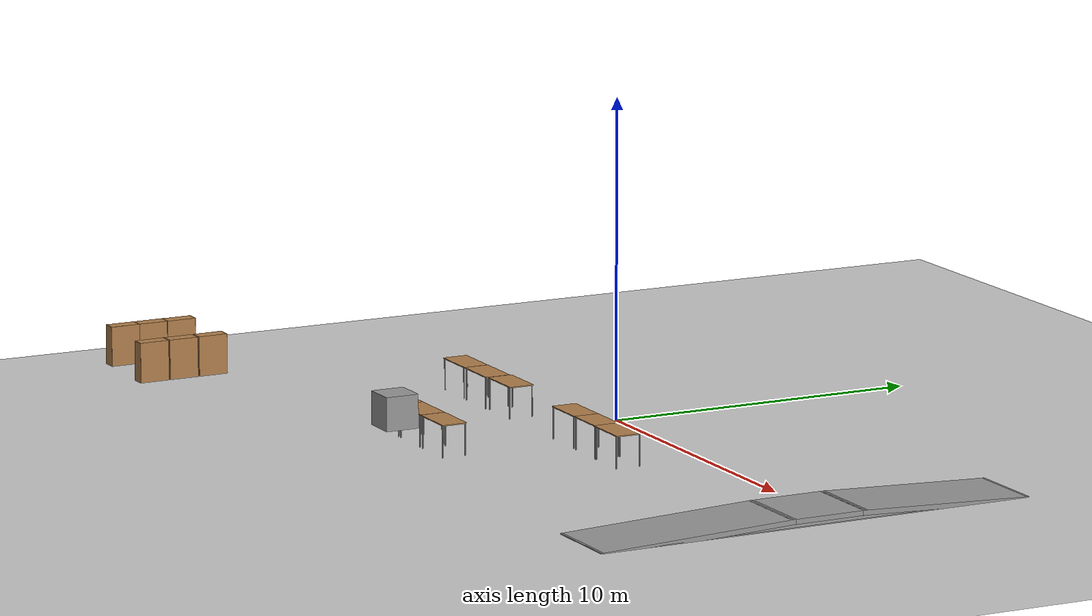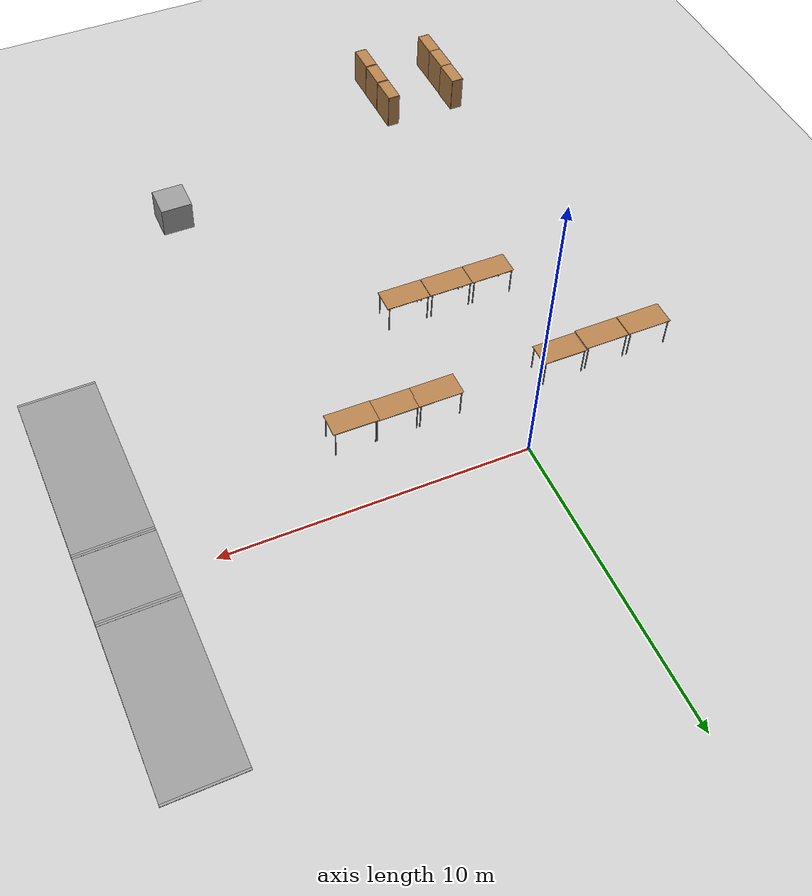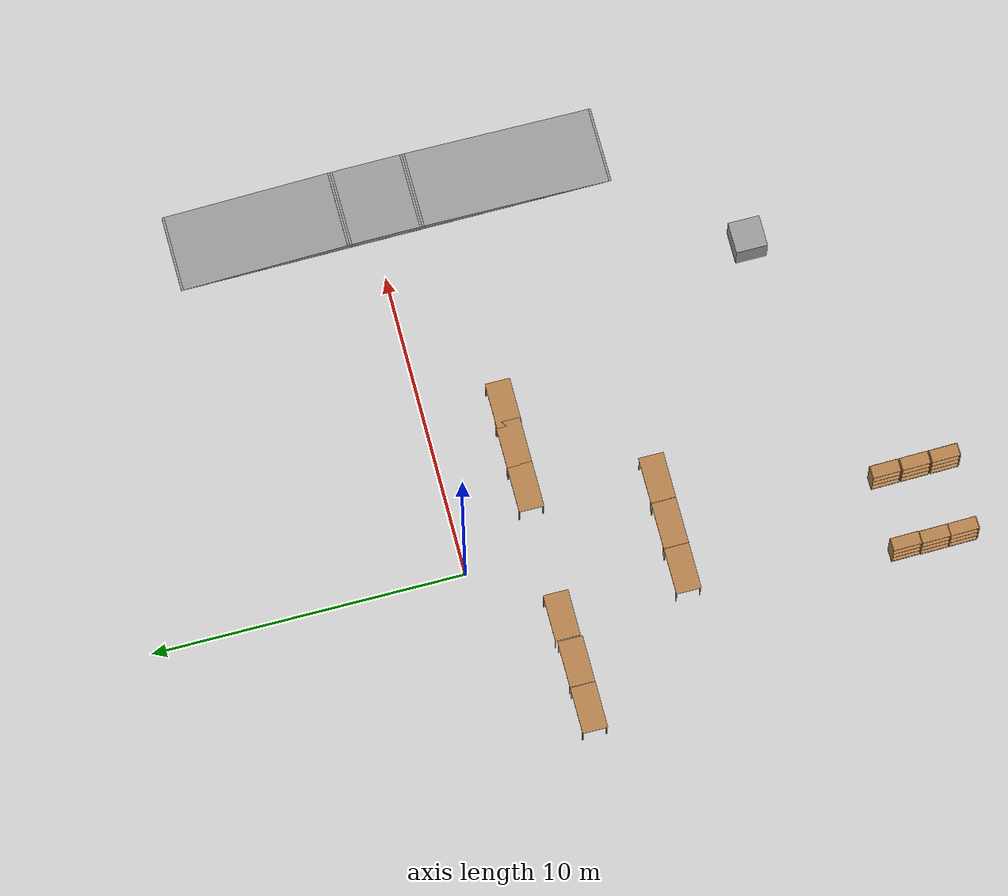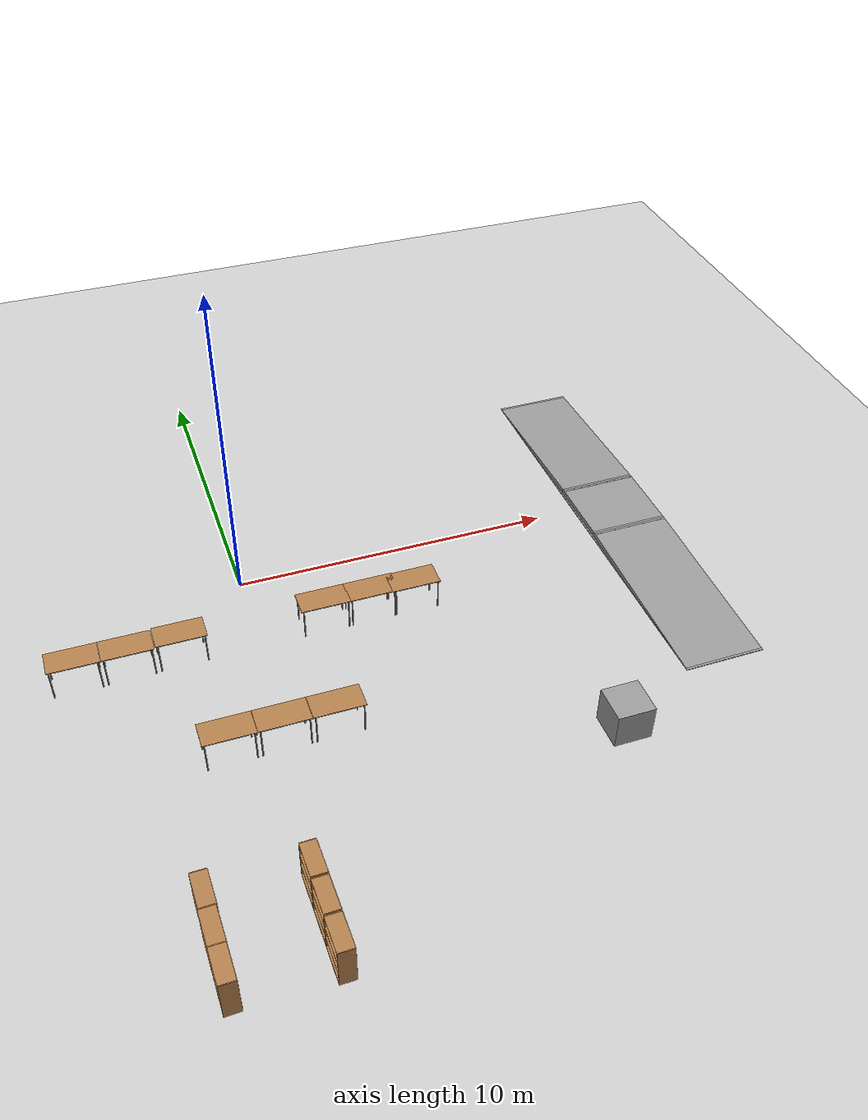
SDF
<sdf version="1.6">
 <world name="default">
  <model name="ground_plane">
   <static>1</static>
   <link name="link">
    <collision name="collision">
     <geometry><plane><normal>0 0 1</normal><size>100 100</size></plane></geometry>
     <surface><friction><ode><mu>100</mu><mu2>50</mu2></ode></friction></surface>
    </collision>
    <visual name="visual">
     <cast_shadows>0</cast_shadows>
     <geometry><plane><normal>0 0 1</normal><size>100 100</size></plane></geometry>
     <material>
      <script><uri>file://media/materials/scripts/gazebo.material</uri><name>Gazebo/Grey</name></script>
     </material>
    </visual>
   </link>
  </model>
  <model name="table">
   <static>1</static>
   <link name="link">
    <collision name="surface">
     <pose>0 0 1 0 -0 0</pose>
     <geometry><box><size>1.5 0.8 0.03</size></box></geometry>
     <surface><friction><ode><mu>0.6</mu><mu2>0.6</mu2></ode></friction></surface>
    </collision>
    <visual name="visual1">
     <pose>0 0 1 0 -0 0</pose>
     <geometry><box><size>1.5 0.8 0.03</size></box></geometry>
     <material>
      <script><uri>file://media/materials/scripts/gazebo.material</uri><name>Gazebo/Wood</name></script>
     </material>
    </visual>
    <collision name="front_left_leg">
     <pose>0.68 0.38 0.5 0 -0 0</pose>
     <geometry><cylinder><radius>0.02</radius><length>1</length></cylinder></geometry>
    </collision>
    <visual name="front_left_leg">
     <pose>0.68 0.38 0.5 0 -0 0</pose>
     <geometry><cylinder><radius>0.02</radius><length>1</length></cylinder></geometry>
     <material>
      <script><uri>file://media/materials/scripts/gazebo.material</uri><name>Gazebo/Grey</name></script>
     </material>
    </visual>
    <collision name="front_right_leg">
     <pose>0.68 -0.38 0.5 0 -0 0</pose>
     <geometry><cylinder><radius>0.02</radius><length>1</length></cylinder></geometry>
    </collision>
    <visual name="front_right_leg">
     <pose>0.68 -0.38 0.5 0 -0 0</pose>
     <geometry><cylinder><radius>0.02</radius><length>1</length></cylinder></geometry>
     <material>
      <script><uri>file://media/materials/scripts/gazebo.material</uri><name>Gazebo/Grey</name></script>
     </material>
    </visual>
    <collision name="back_right_leg">
     <pose>-0.68 -0.38 0.5 0 -0 0</pose>
     <geometry><cylinder><radius>0.02</radius><length>1</length></cylinder></geometry>
    </collision>
    <visual name="back_right_leg">
     <pose>-0.68 -0.38 0.5 0 -0 0</pose>
     <geometry><cylinder><radius>0.02</radius><length>1</length></cylinder></geometry>
     <material>
      <script><uri>file://media/materials/scripts/gazebo.material</uri><name>Gazebo/Grey</name></script>
     </material>
    </visual>
    <collision name="back_left_leg">
     <pose>-0.68 0.38 0.5 0 -0 0</pose>
     <geometry><cylinder><radius>0.02</radius><length>1</length></cylinder></geometry>
    </collision>
    <visual name="back_left_leg">
     <pose>-0.68 0.38 0.5 0 -0 0</pose>
     <geometry><cylinder><radius>0.02</radius><length>1</length></cylinder></geometry>
     <material>
      <script><uri>file://media/materials/scripts/gazebo.material</uri><name>Gazebo/Grey</name></script>
     </material>
    </visual>
   </link>
   <pose>-1.77581 -6.45658 0 0 -0 0</pose>
  </model>
  <model name="table_0">
   <static>1</static>
   <link name="link">
    <collision name="surface">
     <pose>0 0 1 0 -0 0</pose>
     <geometry><box><size>1.5 0.8 0.03</size></box></geometry>
     <surface><friction><ode><mu>0.6</mu><mu2>0.6</mu2></ode></friction></surface>
    </collision>
    <visual name="visual1">
     <pose>0 0 1 0 -0 0</pose>
     <geometry><box><size>1.5 0.8 0.03</size></box></geometry>
     <material>
      <script><uri>file://media/materials/scripts/gazebo.material</uri><name>Gazebo/Wood</name></script>
     </material>
    </visual>
    <collision name="front_left_leg">
     <pose>0.68 0.38 0.5 0 -0 0</pose>
     <geometry><cylinder><radius>0.02</radius><length>1</length></cylinder></geometry>
    </collision>
    <visual name="front_left_leg">
     <pose>0.68 0.38 0.5 0 -0 0</pose>
     <geometry><cylinder><radius>0.02</radius><length>1</length></cylinder></geometry>
     <material>
      <script><uri>file://media/materials/scripts/gazebo.material</uri><name>Gazebo/Grey</name></script>
     </material>
    </visual>
    <collision name="front_right_leg">
     <pose>0.68 -0.38 0.5 0 -0 0</pose>
     <geometry><cylinder><radius>0.02</radius><length>1</length></cylinder></geometry>
    </collision>
    <visual name="front_right_leg">
     <pose>0.68 -0.38 0.5 0 -0 0</pose>
     <geometry><cylinder><radius>0.02</radius><length>1</length></cylinder></geometry>
     <material>
      <script><uri>file://media/materials/scripts/gazebo.material</uri><name>Gazebo/Grey</name></script>
     </material>
    </visual>
    <collision name="back_right_leg">
     <pose>-0.68 -0.38 0.5 0 -0 0</pose>
     <geometry><cylinder><radius>0.02</radius><length>1</length></cylinder></geometry>
    </collision>
    <visual name="back_right_leg">
     <pose>-0.68 -0.38 0.5 0 -0 0</pose>
     <geometry><cylinder><radius>0.02</radius><length>1</length></cylinder></geometry>
     <material>
      <script><uri>file://media/materials/scripts/gazebo.material</uri><name>Gazebo/Grey</name></script>
     </material>
    </visual>
    <collision name="back_left_leg">
     <pose>-0.68 0.38 0.5 0 -0 0</pose>
     <geometry><cylinder><radius>0.02</radius><length>1</length></cylinder></geometry>
    </collision>
    <visual name="back_left_leg">
     <pose>-0.68 0.38 0.5 0 -0 0</pose>
     <geometry><cylinder><radius>0.02</radius><length>1</length></cylinder></geometry>
     <material>
      <script><uri>file://media/materials/scripts/gazebo.material</uri><name>Gazebo/Grey</name></script>
     </material>
    </visual>
   </link>
   <pose>-0.266949 -6.45533 0 0 -0 0</pose>
  </model>
  <model name="table_1">
   <static>1</static>
   <link name="link">
    <collision name="surface">
     <pose>0 0 1 0 -0 0</pose>
     <geometry><box><size>1.5 0.8 0.03</size></box></geometry>
     <surface><friction><ode><mu>0.6</mu><mu2>0.6</mu2></ode></friction></surface>
    </collision>
    <visual name="visual1">
     <pose>0 0 1 0 -0 0</pose>
     <geometry><box><size>1.5 0.8 0.03</size></box></geometry>
     <material>
      <script><uri>file://media/materials/scripts/gazebo.material</uri><name>Gazebo/Wood</name></script>
     </material>
    </visual>
    <collision name="front_left_leg">
     <pose>0.68 0.38 0.5 0 -0 0</pose>
     <geometry><cylinder><radius>0.02</radius><length>1</length></cylinder></geometry>
    </collision>
    <visual name="front_left_leg">
     <pose>0.68 0.38 0.5 0 -0 0</pose>
     <geometry><cylinder><radius>0.02</radius><length>1</length></cylinder></geometry>
     <material>
      <script><uri>file://media/materials/scripts/gazebo.material</uri><name>Gazebo/Grey</name></script>
     </material>
    </visual>
    <collision name="front_right_leg">
     <pose>0.68 -0.38 0.5 0 -0 0</pose>
     <geometry><cylinder><radius>0.02</radius><length>1</length></cylinder></geometry>
    </collision>
    <visual name="front_right_leg">
     <pose>0.68 -0.38 0.5 0 -0 0</pose>
     <geometry><cylinder><radius>0.02</radius><length>1</length></cylinder></geometry>
     <material>
      <script><uri>file://media/materials/scripts/gazebo.material</uri><name>Gazebo/Grey</name></script>
     </material>
    </visual>
    <collision name="back_right_leg">
     <pose>-0.68 -0.38 0.5 0 -0 0</pose>
     <geometry><cylinder><radius>0.02</radius><length>1</length></cylinder></geometry>
    </collision>
    <visual name="back_right_leg">
     <pose>-0.68 -0.38 0.5 0 -0 0</pose>
     <geometry><cylinder><radius>0.02</radius><length>1</length></cylinder></geometry>
     <material>
      <script><uri>file://media/materials/scripts/gazebo.material</uri><name>Gazebo/Grey</name></script>
     </material>
    </visual>
    <collision name="back_left_leg">
     <pose>-0.68 0.38 0.5 0 -0 0</pose>
     <geometry><cylinder><radius>0.02</radius><length>1</length></cylinder></geometry>
    </collision>
    <visual name="back_left_leg">
     <pose>-0.68 0.38 0.5 0 -0 0</pose>
     <geometry><cylinder><radius>0.02</radius><length>1</length></cylinder></geometry>
     <material>
      <script><uri>file://media/materials/scripts/gazebo.material</uri><name>Gazebo/Grey</name></script>
     </material>
    </visual>
   </link>
   <pose>1.24514 -6.45321 0 0 -0 0</pose>
  </model>
  <model name="table_14">
   <static>1</static>
   <link name="link">
    <collision name="surface">
     <pose>0 0 1 0 -0 0</pose>
     <geometry><box><size>1.5 0.8 0.03</size></box></geometry>
     <surface><friction><ode><mu>0.6</mu><mu2>0.6</mu2></ode></friction></surface>
    </collision>
    <visual name="visual1">
     <pose>0 0 1 0 -0 0</pose>
     <geometry><box><size>1.5 0.8 0.03</size></box></geometry>
     <material>
      <script><uri>file://media/materials/scripts/gazebo.material</uri><name>Gazebo/Wood</name></script>
     </material>
    </visual>
    <collision name="front_left_leg">
     <pose>0.68 0.38 0.5 0 -0 0</pose>
     <geometry><cylinder><radius>0.02</radius><length>1</length></cylinder></geometry>
    </collision>
    <visual name="front_left_leg">
     <pose>0.68 0.38 0.5 0 -0 0</pose>
     <geometry><cylinder><radius>0.02</radius><length>1</length></cylinder></geometry>
     <material>
      <script><uri>file://media/materials/scripts/gazebo.material</uri><name>Gazebo/Grey</name></script>
     </material>
    </visual>
    <collision name="front_right_leg">
     <pose>0.68 -0.38 0.5 0 -0 0</pose>
     <geometry><cylinder><radius>0.02</radius><length>1</length></cylinder></geometry>
    </collision>
    <visual name="front_right_leg">
     <pose>0.68 -0.38 0.5 0 -0 0</pose>
     <geometry><cylinder><radius>0.02</radius><length>1</length></cylinder></geometry>
     <material>
      <script><uri>file://media/materials/scripts/gazebo.material</uri><name>Gazebo/Grey</name></script>
     </material>
    </visual>
    <collision name="back_right_leg">
     <pose>-0.68 -0.38 0.5 0 -0 0</pose>
     <geometry><cylinder><radius>0.02</radius><length>1</length></cylinder></geometry>
    </collision>
    <visual name="back_right_leg">
     <pose>-0.68 -0.38 0.5 0 -0 0</pose>
     <geometry><cylinder><radius>0.02</radius><length>1</length></cylinder></geometry>
     <material>
      <script><uri>file://media/materials/scripts/gazebo.material</uri><name>Gazebo/Grey</name></script>
     </material>
    </visual>
    <collision name="back_left_leg">
     <pose>-0.68 0.38 0.5 0 -0 0</pose>
     <geometry><cylinder><radius>0.02</radius><length>1</length></cylinder></geometry>
    </collision>
    <visual name="back_left_leg">
     <pose>-0.68 0.38 0.5 0 -0 0</pose>
     <geometry><cylinder><radius>0.02</radius><length>1</length></cylinder></geometry>
     <material>
      <script><uri>file://media/materials/scripts/gazebo.material</uri><name>Gazebo/Grey</name></script>
     </material>
    </visual>
   </link>
   <pose>-5.32468 -2.52711 0 0 -0 0</pose>
  </model>
  <model name="table_15">
   <static>1</static>
   <link name="link">
    <collision name="surface">
     <pose>0 0 1 0 -0 0</pose>
     <geometry><box><size>1.5 0.8 0.03</size></box></geometry>
     <surface><friction><ode><mu>0.6</mu><mu2>0.6</mu2></ode></friction></surface>
    </collision>
    <visual name="visual1">
     <pose>0 0 1 0 -0 0</pose>
     <geometry><box><size>1.5 0.8 0.03</size></box></geometry>
     <material>
      <script><uri>file://media/materials/scripts/gazebo.material</uri><name>Gazebo/Wood</name></script>
     </material>
    </visual>
    <collision name="front_left_leg">
     <pose>0.68 0.38 0.5 0 -0 0</pose>
     <geometry><cylinder><radius>0.02</radius><length>1</length></cylinder></geometry>
    </collision>
    <visual name="front_left_leg">
     <pose>0.68 0.38 0.5 0 -0 0</pose>
     <geometry><cylinder><radius>0.02</radius><length>1</length></cylinder></geometry>
     <material>
      <script><uri>file://media/materials/scripts/gazebo.material</uri><name>Gazebo/Grey</name></script>
     </material>
    </visual>
    <collision name="front_right_leg">
     <pose>0.68 -0.38 0.5 0 -0 0</pose>
     <geometry><cylinder><radius>0.02</radius><length>1</length></cylinder></geometry>
    </collision>
    <visual name="front_right_leg">
     <pose>0.68 -0.38 0.5 0 -0 0</pose>
     <geometry><cylinder><radius>0.02</radius><length>1</length></cylinder></geometry>
     <material>
      <script><uri>file://media/materials/scripts/gazebo.material</uri><name>Gazebo/Grey</name></script>
     </material>
    </visual>
    <collision name="back_right_leg">
     <pose>-0.68 -0.38 0.5 0 -0 0</pose>
     <geometry><cylinder><radius>0.02</radius><length>1</length></cylinder></geometry>
    </collision>
    <visual name="back_right_leg">
     <pose>-0.68 -0.38 0.5 0 -0 0</pose>
     <geometry><cylinder><radius>0.02</radius><length>1</length></cylinder></geometry>
     <material>
      <script><uri>file://media/materials/scripts/gazebo.material</uri><name>Gazebo/Grey</name></script>
     </material>
    </visual>
    <collision name="back_left_leg">
     <pose>-0.68 0.38 0.5 0 -0 0</pose>
     <geometry><cylinder><radius>0.02</radius><length>1</length></cylinder></geometry>
    </collision>
    <visual name="back_left_leg">
     <pose>-0.68 0.38 0.5 0 -0 0</pose>
     <geometry><cylinder><radius>0.02</radius><length>1</length></cylinder></geometry>
     <material>
      <script><uri>file://media/materials/scripts/gazebo.material</uri><name>Gazebo/Grey</name></script>
     </material>
    </visual>
   </link>
   <pose>-3.80987 -2.52228 0 0 -0 0</pose>
  </model>
  <model name="table_16">
   <static>1</static>
   <link name="link">
    <collision name="surface">
     <pose>0 0 1 0 -0 0</pose>
     <geometry><box><size>1.5 0.8 0.03</size></box></geometry>
     <surface><friction><ode><mu>0.6</mu><mu2>0.6</mu2></ode></friction></surface>
    </collision>
    <visual name="visual1">
     <pose>0 0 1 0 -0 0</pose>
     <geometry><box><size>1.5 0.8 0.03</size></box></geometry>
     <material>
      <script><uri>file://media/materials/scripts/gazebo.material</uri><name>Gazebo/Wood</name></script>
     </material>
    </visual>
    <collision name="front_left_leg">
     <pose>0.68 0.38 0.5 0 -0 0</pose>
     <geometry><cylinder><radius>0.02</radius><length>1</length></cylinder></geometry>
    </collision>
    <visual name="front_left_leg">
     <pose>0.68 0.38 0.5 0 -0 0</pose>
     <geometry><cylinder><radius>0.02</radius><length>1</length></cylinder></geometry>
     <material>
      <script><uri>file://media/materials/scripts/gazebo.material</uri><name>Gazebo/Grey</name></script>
     </material>
    </visual>
    <collision name="front_right_leg">
     <pose>0.68 -0.38 0.5 0 -0 0</pose>
     <geometry><cylinder><radius>0.02</radius><length>1</length></cylinder></geometry>
    </collision>
    <visual name="front_right_leg">
     <pose>0.68 -0.38 0.5 0 -0 0</pose>
     <geometry><cylinder><radius>0.02</radius><length>1</length></cylinder></geometry>
     <material>
      <script><uri>file://media/materials/scripts/gazebo.material</uri><name>Gazebo/Grey</name></script>
     </material>
    </visual>
    <collision name="back_right_leg">
     <pose>-0.68 -0.38 0.5 0 -0 0</pose>
     <geometry><cylinder><radius>0.02</radius><length>1</length></cylinder></geometry>
    </collision>
    <visual name="back_right_leg">
     <pose>-0.68 -0.38 0.5 0 -0 0</pose>
     <geometry><cylinder><radius>0.02</radius><length>1</length></cylinder></geometry>
     <material>
      <script><uri>file://media/materials/scripts/gazebo.material</uri><name>Gazebo/Grey</name></script>
     </material>
    </visual>
    <collision name="back_left_leg">
     <pose>-0.68 0.38 0.5 0 -0 0</pose>
     <geometry><cylinder><radius>0.02</radius><length>1</length></cylinder></geometry>
    </collision>
    <visual name="back_left_leg">
     <pose>-0.68 0.38 0.5 0 -0 0</pose>
     <geometry><cylinder><radius>0.02</radius><length>1</length></cylinder></geometry>
     <material>
      <script><uri>file://media/materials/scripts/gazebo.material</uri><name>Gazebo/Grey</name></script>
     </material>
    </visual>
   </link>
   <pose>-2.27795 -2.46752 0 0 -0 0</pose>
  </model>
  <model name="table_19">
   <static>1</static>
   <link name="link">
    <collision name="surface">
     <pose>0 0 1 0 -0 0</pose>
     <geometry><box><size>1.5 0.8 0.03</size></box></geometry>
     <surface><friction><ode><mu>0.6</mu><mu2>0.6</mu2></ode></friction></surface>
    </collision>
    <visual name="visual1">
     <pose>0 0 1 0 -0 0</pose>
     <geometry><box><size>1.5 0.8 0.03</size></box></geometry>
     <material>
      <script><uri>file://media/materials/scripts/gazebo.material</uri><name>Gazebo/Wood</name></script>
     </material>
    </visual>
    <collision name="front_left_leg">
     <pose>0.68 0.38 0.5 0 -0 0</pose>
     <geometry><cylinder><radius>0.02</radius><length>1</length></cylinder></geometry>
    </collision>
    <visual name="front_left_leg">
     <pose>0.68 0.38 0.5 0 -0 0</pose>
     <geometry><cylinder><radius>0.02</radius><length>1</length></cylinder></geometry>
     <material>
      <script><uri>file://media/materials/scripts/gazebo.material</uri><name>Gazebo/Grey</name></script>
     </material>
    </visual>
    <collision name="front_right_leg">
     <pose>0.68 -0.38 0.5 0 -0 0</pose>
     <geometry><cylinder><radius>0.02</radius><length>1</length></cylinder></geometry>
    </collision>
    <visual name="front_right_leg">
     <pose>0.68 -0.38 0.5 0 -0 0</pose>
     <geometry><cylinder><radius>0.02</radius><length>1</length></cylinder></geometry>
     <material>
      <script><uri>file://media/materials/scripts/gazebo.material</uri><name>Gazebo/Grey</name></script>
     </material>
    </visual>
    <collision name="back_right_leg">
     <pose>-0.68 -0.38 0.5 0 -0 0</pose>
     <geometry><cylinder><radius>0.02</radius><length>1</length></cylinder></geometry>
    </collision>
    <visual name="back_right_leg">
     <pose>-0.68 -0.38 0.5 0 -0 0</pose>
     <geometry><cylinder><radius>0.02</radius><length>1</length></cylinder></geometry>
     <material>
      <script><uri>file://media/materials/scripts/gazebo.material</uri><name>Gazebo/Grey</name></script>
     </material>
    </visual>
    <collision name="back_left_leg">
     <pose>-0.68 0.38 0.5 0 -0 0</pose>
     <geometry><cylinder><radius>0.02</radius><length>1</length></cylinder></geometry>
    </collision>
    <visual name="back_left_leg">
     <pose>-0.68 0.38 0.5 0 -0 0</pose>
     <geometry><cylinder><radius>0.02</radius><length>1</length></cylinder></geometry>
     <material>
      <script><uri>file://media/materials/scripts/gazebo.material</uri><name>Gazebo/Grey</name></script>
     </material>
    </visual>
   </link>
   <pose>4.78899 -2.46187 0 0 -0 0</pose>
  </model>
  <model name="bookshelf_clone_clone_clone_17">
   <static>1</static>
   <link name="link">
    <inertial><mass>1</mass></inertial>
    <collision name="back">
     <pose>0 0.005 0.6 0 -0 0</pose>
     <geometry><box><size>0.9 0.01 1.2</size></box></geometry>
    </collision>
    <visual name="visual1">
     <pose>0 0.005 0.6 0 -0 0</pose>
     <geometry><box><size>0.9 0.01 1.2</size></box></geometry>
     <material>
      <script><uri>file://media/materials/scripts/gazebo.material</uri><name>Gazebo/Wood</name></script>
     </material>
    </visual>
    <collision name="left_side">
     <pose>0.45 -0.195 0.6 0 -0 0</pose>
     <geometry><box><size>0.02 0.4 1.2</size></box></geometry>
    </collision>
    <visual name="visual2">
     <pose>0.45 -0.195 0.6 0 -0 0</pose>
     <geometry><box><size>0.02 0.4 1.2</size></box></geometry>
     <material>
      <script><uri>file://media/materials/scripts/gazebo.material</uri><name>Gazebo/Wood</name></script>
     </material>
    </visual>
    <collision name="right_side">
     <pose>-0.45 -0.195 0.6 0 -0 0</pose>
     <geometry><box><size>0.02 0.4 1.2</size></box></geometry>
    </collision>
    <visual name="visual3">
     <pose>-0.45 -0.195 0.6 0 -0 0</pose>
     <geometry><box><size>0.02 0.4 1.2</size></box></geometry>
     <material>
      <script><uri>file://media/materials/scripts/gazebo.material</uri><name>Gazebo/Wood</name></script>
     </material>
    </visual>
    <collision name="bottom">
     <pose>0 -0.195 0.03 0 -0 0</pose>
     <geometry><box><size>0.88 0.4 0.06</size></box></geometry>
    </collision>
    <visual name="visual4">
     <pose>0 -0.195 0.03 0 -0 0</pose>
     <geometry><box><size>0.88 0.4 0.06</size></box></geometry>
     <material>
      <script><uri>file://media/materials/scripts/gazebo.material</uri><name>Gazebo/Wood</name></script>
     </material>
    </visual>
    <collision name="top">
     <pose>0 -0.195 1.19 0 -0 0</pose>
     <geometry><box><size>0.88 0.4 0.02</size></box></geometry>
    </collision>
    <visual name="visual5">
     <pose>0 -0.195 1.19 0 -0 0</pose>
     <geometry><box><size>0.88 0.4 0.02</size></box></geometry>
     <material>
      <script><uri>file://media/materials/scripts/gazebo.material</uri><name>Gazebo/Wood</name></script>
     </material>
    </visual>
    <collision name="low_shelf">
     <pose>0 -0.195 0.43 0 -0 0</pose>
     <geometry><box><size>0.88 0.4 0.02</size></box></geometry>
    </collision>
    <visual name="visual6">
     <pose>0 -0.195 0.43 0 -0 0</pose>
     <geometry><box><size>0.88 0.4 0.02</size></box></geometry>
     <material>
      <script><uri>file://media/materials/scripts/gazebo.material</uri><name>Gazebo/Wood</name></script>
     </material>
    </visual>
    <collision name="high_shelf">
     <pose>0 -0.195 0.8 0 -0 0</pose>
     <geometry><box><size>0.88 0.4 0.02</size></box></geometry>
    </collision>
    <visual name="visual7">
     <pose>0 -0.195 0.8 0 -0 0</pose>
     <geometry><box><size>0.88 0.4 0.02</size></box></geometry>
     <material>
      <script><uri>file://media/materials/scripts/gazebo.material</uri><name>Gazebo/Wood</name></script>
     </material>
    </visual>
    <enable_wind>1</enable_wind>
   </link>
   <pose>-3.23164 -12.9838 2.61718 0 0 -1.55468</pose>
   <enable_wind>1</enable_wind>
  </model>
  <model name="bookshelf_clone_clone_clone_18">
   <static>1</static>
   <link name="link">
    <inertial><mass>1</mass></inertial>
    <collision name="back">
     <pose>0 0.005 0.6 0 -0 0</pose>
     <geometry><box><size>0.9 0.01 1.2</size></box></geometry>
    </collision>
    <visual name="visual1">
     <pose>0 0.005 0.6 0 -0 0</pose>
     <geometry><box><size>0.9 0.01 1.2</size></box></geometry>
     <material>
      <script><uri>file://media/materials/scripts/gazebo.material</uri><name>Gazebo/Wood</name></script>
     </material>
    </visual>
    <collision name="left_side">
     <pose>0.45 -0.195 0.6 0 -0 0</pose>
     <geometry><box><size>0.02 0.4 1.2</size></box></geometry>
    </collision>
    <visual name="visual2">
     <pose>0.45 -0.195 0.6 0 -0 0</pose>
     <geometry><box><size>0.02 0.4 1.2</size></box></geometry>
     <material>
      <script><uri>file://media/materials/scripts/gazebo.material</uri><name>Gazebo/Wood</name></script>
     </material>
    </visual>
    <collision name="right_side">
     <pose>-0.45 -0.195 0.6 0 -0 0</pose>
     <geometry><box><size>0.02 0.4 1.2</size></box></geometry>
    </collision>
    <visual name="visual3">
     <pose>-0.45 -0.195 0.6 0 -0 0</pose>
     <geometry><box><size>0.02 0.4 1.2</size></box></geometry>
     <material>
      <script><uri>file://media/materials/scripts/gazebo.material</uri><name>Gazebo/Wood</name></script>
     </material>
    </visual>
    <collision name="bottom">
     <pose>0 -0.195 0.03 0 -0 0</pose>
     <geometry><box><size>0.88 0.4 0.06</size></box></geometry>
    </collision>
    <visual name="visual4">
     <pose>0 -0.195 0.03 0 -0 0</pose>
     <geometry><box><size>0.88 0.4 0.06</size></box></geometry>
     <material>
      <script><uri>file://media/materials/scripts/gazebo.material</uri><name>Gazebo/Wood</name></script>
     </material>
    </visual>
    <collision name="top">
     <pose>0 -0.195 1.19 0 -0 0</pose>
     <geometry><box><size>0.88 0.4 0.02</size></box></geometry>
    </collision>
    <visual name="visual5">
     <pose>0 -0.195 1.19 0 -0 0</pose>
     <geometry><box><size>0.88 0.4 0.02</size></box></geometry>
     <material>
      <script><uri>file://media/materials/scripts/gazebo.material</uri><name>Gazebo/Wood</name></script>
     </material>
    </visual>
    <collision name="low_shelf">
     <pose>0 -0.195 0.43 0 -0 0</pose>
     <geometry><box><size>0.88 0.4 0.02</size></box></geometry>
    </collision>
    <visual name="visual6">
     <pose>0 -0.195 0.43 0 -0 0</pose>
     <geometry><box><size>0.88 0.4 0.02</size></box></geometry>
     <material>
      <script><uri>file://media/materials/scripts/gazebo.material</uri><name>Gazebo/Wood</name></script>
     </material>
    </visual>
    <collision name="high_shelf">
     <pose>0 -0.195 0.8 0 -0 0</pose>
     <geometry><box><size>0.88 0.4 0.02</size></box></geometry>
    </collision>
    <visual name="visual7">
     <pose>0 -0.195 0.8 0 -0 0</pose>
     <geometry><box><size>0.88 0.4 0.02</size></box></geometry>
     <material>
      <script><uri>file://media/materials/scripts/gazebo.material</uri><name>Gazebo/Wood</name></script>
     </material>
    </visual>
    <enable_wind>1</enable_wind>
   </link>
   <pose>-3.23274 -13.8968 2.61718 0 0 -1.55468</pose>
   <enable_wind>1</enable_wind>
  </model>
  <model name="bookshelf_clone_clone_clone_19">
   <static>1</static>
   <link name="link">
    <inertial><mass>1</mass></inertial>
    <collision name="back">
     <pose>0 0.005 0.6 0 -0 0</pose>
     <geometry><box><size>0.9 0.01 1.2</size></box></geometry>
    </collision>
    <visual name="visual1">
     <pose>0 0.005 0.6 0 -0 0</pose>
     <geometry><box><size>0.9 0.01 1.2</size></box></geometry>
     <material>
      <script><uri>file://media/materials/scripts/gazebo.material</uri><name>Gazebo/Wood</name></script>
     </material>
    </visual>
    <collision name="left_side">
     <pose>0.45 -0.195 0.6 0 -0 0</pose>
     <geometry><box><size>0.02 0.4 1.2</size></box></geometry>
    </collision>
    <visual name="visual2">
     <pose>0.45 -0.195 0.6 0 -0 0</pose>
     <geometry><box><size>0.02 0.4 1.2</size></box></geometry>
     <material>
      <script><uri>file://media/materials/scripts/gazebo.material</uri><name>Gazebo/Wood</name></script>
     </material>
    </visual>
    <collision name="right_side">
     <pose>-0.45 -0.195 0.6 0 -0 0</pose>
     <geometry><box><size>0.02 0.4 1.2</size></box></geometry>
    </collision>
    <visual name="visual3">
     <pose>-0.45 -0.195 0.6 0 -0 0</pose>
     <geometry><box><size>0.02 0.4 1.2</size></box></geometry>
     <material>
      <script><uri>file://media/materials/scripts/gazebo.material</uri><name>Gazebo/Wood</name></script>
     </material>
    </visual>
    <collision name="bottom">
     <pose>0 -0.195 0.03 0 -0 0</pose>
     <geometry><box><size>0.88 0.4 0.06</size></box></geometry>
    </collision>
    <visual name="visual4">
     <pose>0 -0.195 0.03 0 -0 0</pose>
     <geometry><box><size>0.88 0.4 0.06</size></box></geometry>
     <material>
      <script><uri>file://media/materials/scripts/gazebo.material</uri><name>Gazebo/Wood</name></script>
     </material>
    </visual>
    <collision name="top">
     <pose>0 -0.195 1.19 0 -0 0</pose>
     <geometry><box><size>0.88 0.4 0.02</size></box></geometry>
    </collision>
    <visual name="visual5">
     <pose>0 -0.195 1.19 0 -0 0</pose>
     <geometry><box><size>0.88 0.4 0.02</size></box></geometry>
     <material>
      <script><uri>file://media/materials/scripts/gazebo.material</uri><name>Gazebo/Wood</name></script>
     </material>
    </visual>
    <collision name="low_shelf">
     <pose>0 -0.195 0.43 0 -0 0</pose>
     <geometry><box><size>0.88 0.4 0.02</size></box></geometry>
    </collision>
    <visual name="visual6">
     <pose>0 -0.195 0.43 0 -0 0</pose>
     <geometry><box><size>0.88 0.4 0.02</size></box></geometry>
     <material>
      <script><uri>file://media/materials/scripts/gazebo.material</uri><name>Gazebo/Wood</name></script>
     </material>
    </visual>
    <collision name="high_shelf">
     <pose>0 -0.195 0.8 0 -0 0</pose>
     <geometry><box><size>0.88 0.4 0.02</size></box></geometry>
    </collision>
    <visual name="visual7">
     <pose>0 -0.195 0.8 0 -0 0</pose>
     <geometry><box><size>0.88 0.4 0.02</size></box></geometry>
     <material>
      <script><uri>file://media/materials/scripts/gazebo.material</uri><name>Gazebo/Wood</name></script>
     </material>
    </visual>
    <enable_wind>1</enable_wind>
   </link>
   <pose>-3.22009 -14.8011 2.61718 0 0 -1.55468</pose>
   <enable_wind>1</enable_wind>
  </model>
  <model name="bookshelf_clone_7">
   <static>1</static>
   <link name="link">
    <inertial><mass>1</mass></inertial>
    <collision name="back">
     <pose>0 0.005 0.6 0 -0 0</pose>
     <geometry><box><size>0.9 0.01 1.2</size></box></geometry>
    </collision>
    <visual name="visual1">
     <pose>0 0.005 0.6 0 -0 0</pose>
     <geometry><box><size>0.9 0.01 1.2</size></box></geometry>
     <material>
      <script><uri>file://media/materials/scripts/gazebo.material</uri><name>Gazebo/Wood</name></script>
     </material>
    </visual>
    <collision name="left_side">
     <pose>0.45 -0.195 0.6 0 -0 0</pose>
     <geometry><box><size>0.02 0.4 1.2</size></box></geometry>
    </collision>
    <visual name="visual2">
     <pose>0.45 -0.195 0.6 0 -0 0</pose>
     <geometry><box><size>0.02 0.4 1.2</size></box></geometry>
     <material>
      <script><uri>file://media/materials/scripts/gazebo.material</uri><name>Gazebo/Wood</name></script>
     </material>
    </visual>
    <collision name="right_side">
     <pose>-0.45 -0.195 0.6 0 -0 0</pose>
     <geometry><box><size>0.02 0.4 1.2</size></box></geometry>
    </collision>
    <visual name="visual3">
     <pose>-0.45 -0.195 0.6 0 -0 0</pose>
     <geometry><box><size>0.02 0.4 1.2</size></box></geometry>
     <material>
      <script><uri>file://media/materials/scripts/gazebo.material</uri><name>Gazebo/Wood</name></script>
     </material>
    </visual>
    <collision name="bottom">
     <pose>0 -0.195 0.03 0 -0 0</pose>
     <geometry><box><size>0.88 0.4 0.06</size></box></geometry>
    </collision>
    <visual name="visual4">
     <pose>0 -0.195 0.03 0 -0 0</pose>
     <geometry><box><size>0.88 0.4 0.06</size></box></geometry>
     <material>
      <script><uri>file://media/materials/scripts/gazebo.material</uri><name>Gazebo/Wood</name></script>
     </material>
    </visual>
    <collision name="top">
     <pose>0 -0.195 1.19 0 -0 0</pose>
     <geometry><box><size>0.88 0.4 0.02</size></box></geometry>
    </collision>
    <visual name="visual5">
     <pose>0 -0.195 1.19 0 -0 0</pose>
     <geometry><box><size>0.88 0.4 0.02</size></box></geometry>
     <material>
      <script><uri>file://media/materials/scripts/gazebo.material</uri><name>Gazebo/Wood</name></script>
     </material>
    </visual>
    <collision name="low_shelf">
     <pose>0 -0.195 0.43 0 -0 0</pose>
     <geometry><box><size>0.88 0.4 0.02</size></box></geometry>
    </collision>
    <visual name="visual6">
     <pose>0 -0.195 0.43 0 -0 0</pose>
     <geometry><box><size>0.88 0.4 0.02</size></box></geometry>
     <material>
      <script><uri>file://media/materials/scripts/gazebo.material</uri><name>Gazebo/Wood</name></script>
     </material>
    </visual>
    <collision name="high_shelf">
     <pose>0 -0.195 0.8 0 -0 0</pose>
     <geometry><box><size>0.88 0.4 0.02</size></box></geometry>
    </collision>
    <visual name="visual7">
     <pose>0 -0.195 0.8 0 -0 0</pose>
     <geometry><box><size>0.88 0.4 0.02</size></box></geometry>
     <material>
      <script><uri>file://media/materials/scripts/gazebo.material</uri><name>Gazebo/Wood</name></script>
     </material>
    </visual>
    <enable_wind>1</enable_wind>
   </link>
   <pose>-0.858278 -12.9994 2.61718 0 0 -1.55468</pose>
   <enable_wind>1</enable_wind>
  </model>
  <model name="bookshelf_clone_8">
   <static>1</static>
   <link name="link">
    <inertial><mass>1</mass></inertial>
    <collision name="back">
     <pose>0 0.005 0.6 0 -0 0</pose>
     <geometry><box><size>0.9 0.01 1.2</size></box></geometry>
    </collision>
    <visual name="visual1">
     <pose>0 0.005 0.6 0 -0 0</pose>
     <geometry><box><size>0.9 0.01 1.2</size></box></geometry>
     <material>
      <script><uri>file://media/materials/scripts/gazebo.material</uri><name>Gazebo/Wood</name></script>
     </material>
    </visual>
    <collision name="left_side">
     <pose>0.45 -0.195 0.6 0 -0 0</pose>
     <geometry><box><size>0.02 0.4 1.2</size></box></geometry>
    </collision>
    <visual name="visual2">
     <pose>0.45 -0.195 0.6 0 -0 0</pose>
     <geometry><box><size>0.02 0.4 1.2</size></box></geometry>
     <material>
      <script><uri>file://media/materials/scripts/gazebo.material</uri><name>Gazebo/Wood</name></script>
     </material>
    </visual>
    <collision name="right_side">
     <pose>-0.45 -0.195 0.6 0 -0 0</pose>
     <geometry><box><size>0.02 0.4 1.2</size></box></geometry>
    </collision>
    <visual name="visual3">
     <pose>-0.45 -0.195 0.6 0 -0 0</pose>
     <geometry><box><size>0.02 0.4 1.2</size></box></geometry>
     <material>
      <script><uri>file://media/materials/scripts/gazebo.material</uri><name>Gazebo/Wood</name></script>
     </material>
    </visual>
    <collision name="bottom">
     <pose>0 -0.195 0.03 0 -0 0</pose>
     <geometry><box><size>0.88 0.4 0.06</size></box></geometry>
    </collision>
    <visual name="visual4">
     <pose>0 -0.195 0.03 0 -0 0</pose>
     <geometry><box><size>0.88 0.4 0.06</size></box></geometry>
     <material>
      <script><uri>file://media/materials/scripts/gazebo.material</uri><name>Gazebo/Wood</name></script>
     </material>
    </visual>
    <collision name="top">
     <pose>0 -0.195 1.19 0 -0 0</pose>
     <geometry><box><size>0.88 0.4 0.02</size></box></geometry>
    </collision>
    <visual name="visual5">
     <pose>0 -0.195 1.19 0 -0 0</pose>
     <geometry><box><size>0.88 0.4 0.02</size></box></geometry>
     <material>
      <script><uri>file://media/materials/scripts/gazebo.material</uri><name>Gazebo/Wood</name></script>
     </material>
    </visual>
    <collision name="low_shelf">
     <pose>0 -0.195 0.43 0 -0 0</pose>
     <geometry><box><size>0.88 0.4 0.02</size></box></geometry>
    </collision>
    <visual name="visual6">
     <pose>0 -0.195 0.43 0 -0 0</pose>
     <geometry><box><size>0.88 0.4 0.02</size></box></geometry>
     <material>
      <script><uri>file://media/materials/scripts/gazebo.material</uri><name>Gazebo/Wood</name></script>
     </material>
    </visual>
    <collision name="high_shelf">
     <pose>0 -0.195 0.8 0 -0 0</pose>
     <geometry><box><size>0.88 0.4 0.02</size></box></geometry>
    </collision>
    <visual name="visual7">
     <pose>0 -0.195 0.8 0 -0 0</pose>
     <geometry><box><size>0.88 0.4 0.02</size></box></geometry>
     <material>
      <script><uri>file://media/materials/scripts/gazebo.material</uri><name>Gazebo/Wood</name></script>
     </material>
    </visual>
    <enable_wind>1</enable_wind>
   </link>
   <pose>-0.844687 -13.9417 2.61718 0 0 -1.55468</pose>
   <enable_wind>1</enable_wind>
  </model>
  <model name="bookshelf_clone_9">
   <static>1</static>
   <link name="link">
    <inertial><mass>1</mass></inertial>
    <collision name="back">
     <pose>0 0.005 0.6 0 -0 0</pose>
     <geometry><box><size>0.9 0.01 1.2</size></box></geometry>
    </collision>
    <visual name="visual1">
     <pose>0 0.005 0.6 0 -0 0</pose>
     <geometry><box><size>0.9 0.01 1.2</size></box></geometry>
     <material>
      <script><uri>file://media/materials/scripts/gazebo.material</uri><name>Gazebo/Wood</name></script>
     </material>
    </visual>
    <collision name="left_side">
     <pose>0.45 -0.195 0.6 0 -0 0</pose>
     <geometry><box><size>0.02 0.4 1.2</size></box></geometry>
    </collision>
    <visual name="visual2">
     <pose>0.45 -0.195 0.6 0 -0 0</pose>
     <geometry><box><size>0.02 0.4 1.2</size></box></geometry>
     <material>
      <script><uri>file://media/materials/scripts/gazebo.material</uri><name>Gazebo/Wood</name></script>
     </material>
    </visual>
    <collision name="right_side">
     <pose>-0.45 -0.195 0.6 0 -0 0</pose>
     <geometry><box><size>0.02 0.4 1.2</size></box></geometry>
    </collision>
    <visual name="visual3">
     <pose>-0.45 -0.195 0.6 0 -0 0</pose>
     <geometry><box><size>0.02 0.4 1.2</size></box></geometry>
     <material>
      <script><uri>file://media/materials/scripts/gazebo.material</uri><name>Gazebo/Wood</name></script>
     </material>
    </visual>
    <collision name="bottom">
     <pose>0 -0.195 0.03 0 -0 0</pose>
     <geometry><box><size>0.88 0.4 0.06</size></box></geometry>
    </collision>
    <visual name="visual4">
     <pose>0 -0.195 0.03 0 -0 0</pose>
     <geometry><box><size>0.88 0.4 0.06</size></box></geometry>
     <material>
      <script><uri>file://media/materials/scripts/gazebo.material</uri><name>Gazebo/Wood</name></script>
     </material>
    </visual>
    <collision name="top">
     <pose>0 -0.195 1.19 0 -0 0</pose>
     <geometry><box><size>0.88 0.4 0.02</size></box></geometry>
    </collision>
    <visual name="visual5">
     <pose>0 -0.195 1.19 0 -0 0</pose>
     <geometry><box><size>0.88 0.4 0.02</size></box></geometry>
     <material>
      <script><uri>file://media/materials/scripts/gazebo.material</uri><name>Gazebo/Wood</name></script>
     </material>
    </visual>
    <collision name="low_shelf">
     <pose>0 -0.195 0.43 0 -0 0</pose>
     <geometry><box><size>0.88 0.4 0.02</size></box></geometry>
    </collision>
    <visual name="visual6">
     <pose>0 -0.195 0.43 0 -0 0</pose>
     <geometry><box><size>0.88 0.4 0.02</size></box></geometry>
     <material>
      <script><uri>file://media/materials/scripts/gazebo.material</uri><name>Gazebo/Wood</name></script>
     </material>
    </visual>
    <collision name="high_shelf">
     <pose>0 -0.195 0.8 0 -0 0</pose>
     <geometry><box><size>0.88 0.4 0.02</size></box></geometry>
    </collision>
    <visual name="visual7">
     <pose>0 -0.195 0.8 0 -0 0</pose>
     <geometry><box><size>0.88 0.4 0.02</size></box></geometry>
     <material>
      <script><uri>file://media/materials/scripts/gazebo.material</uri><name>Gazebo/Wood</name></script>
     </material>
    </visual>
    <enable_wind>1</enable_wind>
   </link>
   <pose>-0.832241 -14.8832 2.61718 0 0 -1.55468</pose>
   <enable_wind>1</enable_wind>
  </model>
  <model name="unit_box_4">
   <pose>7.38151 -10.9576 3.1 0 -0 5e-06</pose>
   <link name="link">
    <inertial>
     <mass>1</mass>
     <inertia>
      <ixx>0.166667</ixx>
      <ixy>0</ixy>
      <ixz>0</ixz>
      <iyy>0.166667</iyy>
      <iyz>0</iyz>
      <izz>0.166667</izz>
     </inertia>
    </inertial>
    <collision name="collision"><geometry><box><size>1 1 1</size></box></geometry></collision>
    <visual name="visual">
     <geometry><box><size>1 1 1</size></box></geometry>
     <material>
      <script><name>Gazebo/Grey</name><uri>file://media/materials/scripts/gazebo.material</uri></script>
     </material>
    </visual>
   </link>
  </model>
  <model name="table_4_clone">
   <static>1</static>
   <link name="link">
    <collision name="surface">
     <pose>0 0 1 0 -0 0</pose>
     <geometry><box><size>1.5 0.8 0.03</size></box></geometry>
     <surface><friction><ode><mu>0.6</mu><mu2>0.6</mu2></ode></friction></surface>
    </collision>
    <visual name="visual1">
     <pose>0 0 1 0 -0 0</pose>
     <geometry><box><size>1.5 0.8 0.03</size></box></geometry>
     <material>
      <script><uri>file://media/materials/scripts/gazebo.material</uri><name>Gazebo/Wood</name></script>
     </material>
    </visual>
    <collision name="front_left_leg">
     <pose>0.68 0.38 0.5 0 -0 0</pose>
     <geometry><cylinder><radius>0.02</radius><length>1</length></cylinder></geometry>
    </collision>
    <visual name="front_left_leg">
     <pose>0.68 0.38 0.5 0 -0 0</pose>
     <geometry><cylinder><radius>0.02</radius><length>1</length></cylinder></geometry>
     <material>
      <script><uri>file://media/materials/scripts/gazebo.material</uri><name>Gazebo/Grey</name></script>
     </material>
    </visual>
    <collision name="front_right_leg">
     <pose>0.68 -0.38 0.5 0 -0 0</pose>
     <geometry><cylinder><radius>0.02</radius><length>1</length></cylinder></geometry>
    </collision>
    <visual name="front_right_leg">
     <pose>0.68 -0.38 0.5 0 -0 0</pose>
     <geometry><cylinder><radius>0.02</radius><length>1</length></cylinder></geometry>
     <material>
      <script><uri>file://media/materials/scripts/gazebo.material</uri><name>Gazebo/Grey</name></script>
     </material>
    </visual>
    <collision name="back_right_leg">
     <pose>-0.68 -0.38 0.5 0 -0 0</pose>
     <geometry><cylinder><radius>0.02</radius><length>1</length></cylinder></geometry>
    </collision>
    <visual name="back_right_leg">
     <pose>-0.68 -0.38 0.5 0 -0 0</pose>
     <geometry><cylinder><radius>0.02</radius><length>1</length></cylinder></geometry>
     <material>
      <script><uri>file://media/materials/scripts/gazebo.material</uri><name>Gazebo/Grey</name></script>
     </material>
    </visual>
    <collision name="back_left_leg">
     <pose>-0.68 0.38 0.5 0 -0 0</pose>
     <geometry><cylinder><radius>0.02</radius><length>1</length></cylinder></geometry>
    </collision>
    <visual name="back_left_leg">
     <pose>-0.68 0.38 0.5 0 -0 0</pose>
     <geometry><cylinder><radius>0.02</radius><length>1</length></cylinder></geometry>
     <material>
      <script><uri>file://media/materials/scripts/gazebo.material</uri><name>Gazebo/Grey</name></script>
     </material>
    </visual>
   </link>
   <pose>3.47165 -2.43987 0 0 -0 0</pose>
  </model>
  <model name="table_4_clone_0">
   <static>1</static>
   <link name="link">
    <collision name="surface">
     <pose>0 0 1 0 -0 0</pose>
     <geometry><box><size>1.5 0.8 0.03</size></box></geometry>
     <surface><friction><ode><mu>0.6</mu><mu2>0.6</mu2></ode></friction></surface>
    </collision>
    <visual name="visual1">
     <pose>0 0 1 0 -0 0</pose>
     <geometry><box><size>1.5 0.8 0.03</size></box></geometry>
     <material>
      <script><uri>file://media/materials/scripts/gazebo.material</uri><name>Gazebo/Wood</name></script>
     </material>
    </visual>
    <collision name="front_left_leg">
     <pose>0.68 0.38 0.5 0 -0 0</pose>
     <geometry><cylinder><radius>0.02</radius><length>1</length></cylinder></geometry>
    </collision>
    <visual name="front_left_leg">
     <pose>0.68 0.38 0.5 0 -0 0</pose>
     <geometry><cylinder><radius>0.02</radius><length>1</length></cylinder></geometry>
     <material>
      <script><uri>file://media/materials/scripts/gazebo.material</uri><name>Gazebo/Grey</name></script>
     </material>
    </visual>
    <collision name="front_right_leg">
     <pose>0.68 -0.38 0.5 0 -0 0</pose>
     <geometry><cylinder><radius>0.02</radius><length>1</length></cylinder></geometry>
    </collision>
    <visual name="front_right_leg">
     <pose>0.68 -0.38 0.5 0 -0 0</pose>
     <geometry><cylinder><radius>0.02</radius><length>1</length></cylinder></geometry>
     <material>
      <script><uri>file://media/materials/scripts/gazebo.material</uri><name>Gazebo/Grey</name></script>
     </material>
    </visual>
    <collision name="back_right_leg">
     <pose>-0.68 -0.38 0.5 0 -0 0</pose>
     <geometry><cylinder><radius>0.02</radius><length>1</length></cylinder></geometry>
    </collision>
    <visual name="back_right_leg">
     <pose>-0.68 -0.38 0.5 0 -0 0</pose>
     <geometry><cylinder><radius>0.02</radius><length>1</length></cylinder></geometry>
     <material>
      <script><uri>file://media/materials/scripts/gazebo.material</uri><name>Gazebo/Grey</name></script>
     </material>
    </visual>
    <collision name="back_left_leg">
     <pose>-0.68 0.38 0.5 0 -0 0</pose>
     <geometry><cylinder><radius>0.02</radius><length>1</length></cylinder></geometry>
    </collision>
    <visual name="back_left_leg">
     <pose>-0.68 0.38 0.5 0 -0 0</pose>
     <geometry><cylinder><radius>0.02</radius><length>1</length></cylinder></geometry>
     <material>
      <script><uri>file://media/materials/scripts/gazebo.material</uri><name>Gazebo/Grey</name></script>
     </material>
    </visual>
   </link>
   <pose>2 -2.44083 0 0 -0 0</pose>
  </model>
  <model name="hill_0">
   <pose>11.3101 -0.696075 0.040944 -1.57118 0 -1.56309</pose>
   <link name="Wall_18">
    <collision name="Wall_18_Collision">
     <geometry><box><size>14 0.15 2.5</size></box></geometry>
     <pose>0 0 1.25 0 -0 0</pose>
    </collision>
    <visual name="Wall_18_Visual">
     <pose>0 0 1.25 0 -0 0</pose>
     <geometry><box><size>14 0.15 2.5</size></box></geometry>
     <material>
      <script><uri>file://media/materials/scripts/gazebo.material</uri><name>Gazebo/Grey</name></script>
      <ambient>1 1 1 1</ambient>
     </material>
     <meta><layer>0</layer></meta>
    </visual>
    <pose>0.00018 0.119127 0 0 -0 0</pose>
   </link>
   <link name="Wall_20">
    <collision name="Wall_20_Collision">
     <geometry><box><size>2.5 0.15 2.5</size></box></geometry>
     <pose>0 0 1.25 0 -0 0</pose>
    </collision>
    <visual name="Wall_20_Visual">
     <pose>0 0 1.25 0 -0 0</pose>
     <geometry><box><size>2.5 0.15 2.5</size></box></geometry>
     <material>
      <script><uri>file://media/materials/scripts/gazebo.material</uri><name>Gazebo/Grey</name></script>
      <ambient>1 1 1 1</ambient>
     </material>
     <meta><layer>0</layer></meta>
    </visual>
    <pose>-0.347545 -0.119127 0 0 -0 0</pose>
   </link>
   <link name="Wall_21">
    <collision name="Wall_21_Collision">
     <geometry><box><size>6.25238 0.15 2.5</size></box></geometry>
     <pose>0 0 1.25 0 -0 0</pose>
    </collision>
    <visual name="Wall_21_Visual">
     <pose>0 0 1.25 0 -0 0</pose>
     <geometry><box><size>6.25238 0.15 2.5</size></box></geometry>
     <material>
      <script><uri>file://media/materials/scripts/gazebo.material</uri><name>Gazebo/Grey</name></script>
      <ambient>1 1 1 1</ambient>
     </material>
     <meta><layer>0</layer></meta>
    </visual>
    <pose>3.87632 0 0 0 -0 0.039053</pose>
   </link>
   <link name="Wall_23">
    <collision name="Wall_23_Collision">
     <geometry><box><size>5.55753 0.15 2.5</size></box></geometry>
     <pose>0 0 1.25 0 -0 0</pose>
    </collision>
    <visual name="Wall_23_Visual">
     <pose>0 0 1.25 0 -0 0</pose>
     <geometry><box><size>5.55753 0.15 2.5</size></box></geometry>
     <material>
      <script><uri>file://media/materials/scripts/gazebo.material</uri><name>Gazebo/Grey</name></script>
      <ambient>1 1 1 1</ambient>
     </material>
     <meta><layer>0</layer></meta>
    </visual>
    <pose>-4.22368 0 0 0 -0 -0.044074</pose>
   </link>
   <static>1</static>
  </model>
 </world>
</sdf>
